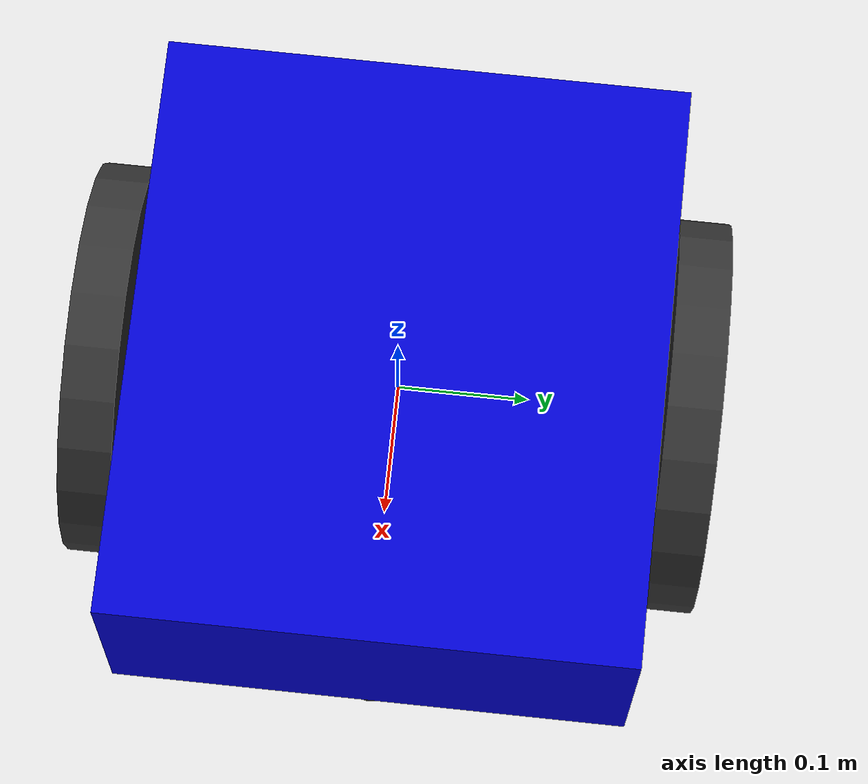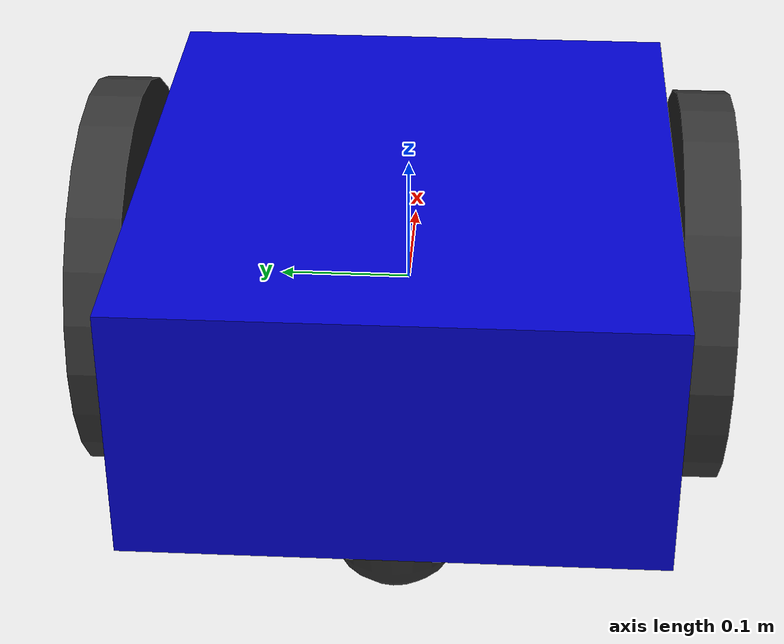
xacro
<?xml version="1.0"?>
<robot xmlns:xacro="http://www.ros.org/wiki/xacro" name="base">

    <!-- Materials -->
    <material name="dark_grey"><color rgba="0.2 0.2 0.2 1.0"/></material>
    <material name="blue"><color rgba="0.0 0.0 0.8 1.0"/></material>

    <!-- Properties -->
    <xacro:property name="base_width" value="0.4"/>
    <xacro:property name="base_length" value="0.45"/>
    <xacro:property name="base_height" value="0.2"/>
    <xacro:property name="wheel_radius" value="0.15"/>
    <xacro:property name="wheel_width" value="0.04"/>
    <xacro:property name="wheel_offset_z" value="0.0"/>
    <xacro:property name="wheel_x_offset" value="0.0"/>
    <xacro:property name="caster_radius" value="0.05"/>

    <!-- Base Link (root) -->
    <link name="base_link">
        <visual>
            <geometry><box size="${base_length} ${base_width} ${base_height}"/></geometry>
            <material name="blue"/>
        </visual>
        <collision>
            <geometry><box size="${base_length} ${base_width} ${base_height}"/></geometry>
        </collision>
        <inertial>
            <mass value="35.0"/>
            <inertia ixx="0.85" ixy="0" ixz="0" iyy="1.17" iyz="0" izz="1.78"/>
        </inertial>
    </link>

    <!-- Footprint below base_link -->
    <link name="base_footprint"/>

    <joint name="base_footprint_joint" type="fixed">
        <parent link="base_link"/>
        <child link="base_footprint"/>
        <origin xyz="0 0 ${-wheel_radius}" rpy="0 0 0"/>
    </joint>

    <!-- Wheel Macro -->
    <xacro:macro name="wheel" params="prefix x_reflect y_reflect">
        <link name="${prefix}_wheel">
            <visual>
                <origin xyz="0 0 0" rpy="${pi/2} 0 0"/>
                <geometry><cylinder radius="${wheel_radius}" length="${wheel_width}"/></geometry>
                <material name="dark_grey"/>
            </visual>
            <collision>
                <origin xyz="0 0 0" rpy="${pi/2} 0 0"/>
                <geometry><cylinder radius="${wheel_radius}" length="${wheel_width}"/></geometry>
            </collision>
            <inertial>
                <mass value="2.0"/>
                <inertia ixx="0.01" ixy="0" ixz="0" iyy="0.01" iyz="0" izz="0.01"/>
            </inertial>
        </link>

        <joint name="${prefix}_wheel_joint" type="continuous">
            <parent link="base_link"/>
            <child link="${prefix}_wheel"/>
            <origin xyz="${x_reflect*wheel_x_offset} ${y_reflect*(base_width/2+wheel_width/2)} ${-wheel_offset_z}" rpy="0 0 0"/>
            <axis xyz="0 1 0"/>
        </joint>

        <gazebo reference="${prefix}_wheel">
            <mu1>0.8</mu1>
            <mu2>0.8</mu2>
            <kp>1000000.0</kp>
            <kd>1.0</kd>
        </gazebo>
    </xacro:macro>

    <!-- Drive wheels centered on base_link -->
    <xacro:wheel prefix="left"  x_reflect="1"  y_reflect="1" />
    <xacro:wheel prefix="right" x_reflect="1"  y_reflect="-1" />

    <!-- Passive casters to prevent rocking -->
    <link name="front_caster">
        <visual>
            <origin xyz="0 0 0" rpy="0 0 0"/>
            <geometry><sphere radius="${caster_radius}"/></geometry>
            <material name="dark_grey"/>
        </visual>
        <collision>
            <origin xyz="0 0 0" rpy="0 0 0"/>
            <geometry><sphere radius="${caster_radius}"/></geometry>
        </collision>
        <inertial>
            <mass value="0.5"/>
            <inertia ixx="0.001" ixy="0" ixz="0" iyy="0.001" iyz="0" izz="0.001"/>
        </inertial>
    </link>

    <gazebo reference="front_caster">
        <mu1>0.6</mu1>
        <mu2>0.6</mu2>
    </gazebo>

    <link name="rear_caster">
        <visual>
            <origin xyz="0 0 0" rpy="0 0 0"/>
            <geometry><sphere radius="${caster_radius}"/></geometry>
            <material name="dark_grey"/>
        </visual>
        <collision>
            <origin xyz="0 0 0" rpy="0 0 0"/>
            <geometry><sphere radius="${caster_radius}"/></geometry>
        </collision>
        <inertial>
            <mass value="0.5"/>
            <inertia ixx="0.001" ixy="0" ixz="0" iyy="0.001" iyz="0" izz="0.001"/>
        </inertial>
    </link>

    <gazebo reference="rear_caster">
        <mu1>0.6</mu1>
        <mu2>0.6</mu2>
    </gazebo>

    <joint name="front_caster_joint" type="fixed">
        <parent link="base_link"/>
        <child link="front_caster"/>
        <origin xyz="${base_length/2 - caster_radius} 0 ${-(wheel_radius - caster_radius)}" rpy="0 0 0"/>
    </joint>

    <joint name="rear_caster_joint" type="fixed">
        <parent link="base_link"/>
        <child link="rear_caster"/>
        <origin xyz="${-base_length/2 + caster_radius} 0 ${-(wheel_radius - caster_radius)}" rpy="0 0 0"/>
    </joint>

    <gazebo>
        <plugin filename="ignition-gazebo-diff-drive-system" name="ignition::gazebo::systems::DiffDrive">
            <topic>cmd_vel</topic>
            <left_joint>left_wheel_joint</left_joint>
            <right_joint>right_wheel_joint</right_joint>

            <!-- Kinematics -->
            <wheel_separation>${base_width + wheel_width}</wheel_separation>
            <wheel_radius>${wheel_radius}</wheel_radius>

            <!-- Limits & Output -->
            <max_wheel_torque>50</max_wheel_torque>
            <max_wheel_acceleration>5.0</max_wheel_acceleration>

            <!-- Odometry -->
            <publish_odom_tf>false</publish_odom_tf>
            <publish_wheel_tf>false</publish_wheel_tf>

        </plugin>

        <plugin filename="ignition-gazebo-odometry-publisher-system" name="ignition::gazebo::systems::OdometryPublisher">
            <odom_frame>odom</odom_frame>
            <robot_base_frame>base_link</robot_base_frame>

            <!-- This tells the plugin to publish the TF transform directly -->
            <publish_odom_tf>true</publish_odom_tf>

            <!-- The topic where the nav_msgs/Odometry will be published -->
            <tf_topic>tf</tf_topic>
            <odom_topic>odom</odom_topic>

            <!-- 0 = 3D (X,Y,Z,R,P,Y), 2 = 2D (X,Y,Yaw) -->
            <dimensions>2</dimensions>
        </plugin>

        <plugin filename="ignition-gazebo-joint-state-publisher-system" name="ignition::gazebo::systems::JointStatePublisher">
            <topic>joint_states</topic>
        </plugin>
    </gazebo>

</robot>
